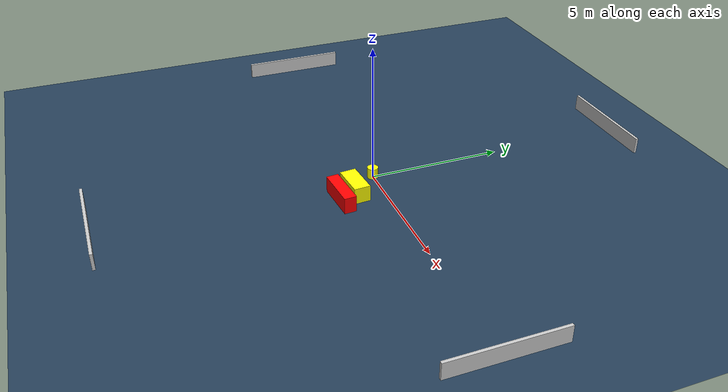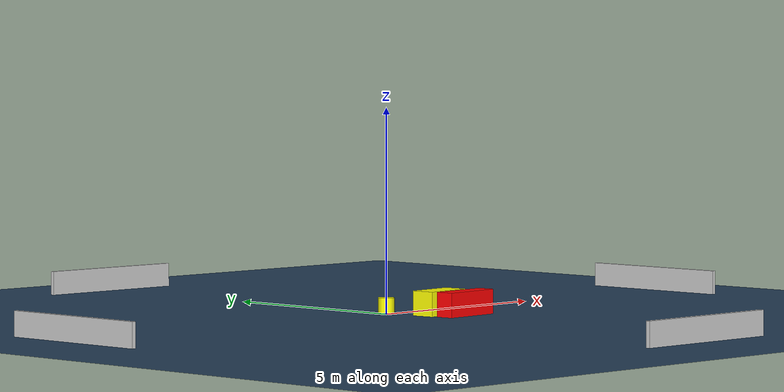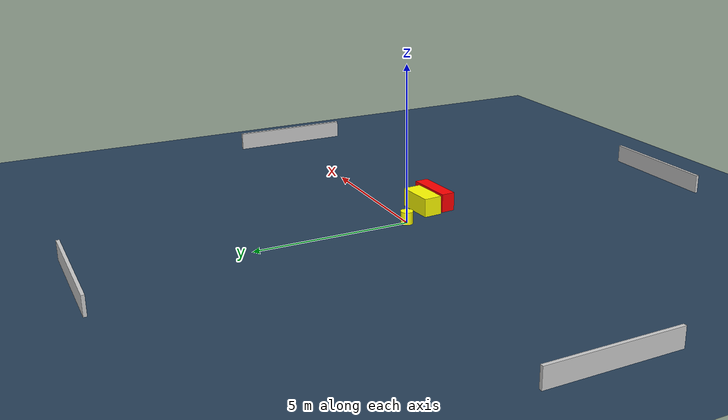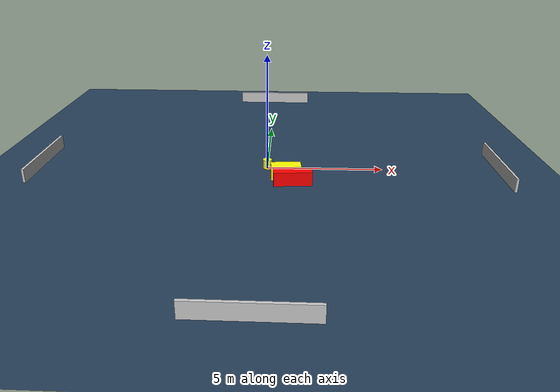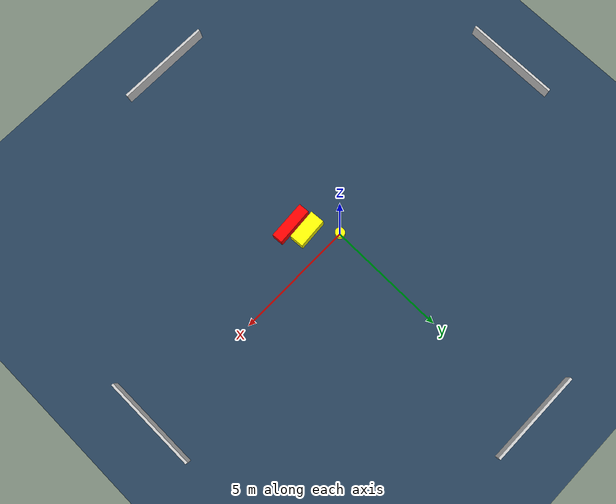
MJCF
<?xml version="1.0" ?>
<mujoco model="generated_environment">
  <option timestep="0.01" integrator="RK4" cone="elliptic"/>
  <default>
    <geom density="1"/>
  </default>
  <asset>
    <texture builtin="gradient" height="3072" name="skybox" rgb1="0.3 0.5 0.7" rgb2="0 0 0" type="skybox" width="512"/>
    <texture builtin="checker" height="300" name="groundplane" rgb1="0.2 0.3 0.4" rgb2="0.1 0.2 0.3" type="2d" width="300"/>
    <material name="groundplane" reflectance="0.2" texrepeat="5 5" texture="groundplane"/>
  </asset>
  <worldbody>
    <light dir="0 0 -1" directional="true" pos="0 0 1.5"/>
    <geom condim="3" friction="0.5 0.005 0.001" material="groundplane" name="floor" pos="0 0 0" size="0 0 0.05" type="plane"/>
    <body name="walls">
      <geom name="wall_1" condim="4" pos="-10.0 0.0 0.3" rgba="0.800000011920929 0.800000011920929 0.800000011920929 1.0" size="0.05 2.0 0.3" type="box"/>
      <geom name="wall_2" condim="4" pos="10.0 0.0 0.3" rgba="0.800000011920929 0.800000011920929 0.800000011920929 1.0" size="0.05 2.0 0.3" type="box"/>
      <geom name="wall_3" condim="4" pos="0.0 -10.0 0.3" rgba="0.800000011920929 0.800000011920929 0.800000011920929 1.0" size="2.0 0.05 0.3" type="box"/>
      <geom name="wall_4" condim="4" pos="0.0 10.0 0.3" rgba="0.800000011920929 0.800000011920929 0.800000011920929 1.0" size="2.0 0.05 0.3" type="box"/>
    </body>
    <body name="robot">
      <joint name="joint_x" type="slide" pos="0 0 0" axis="1 0 0"/>
      <joint name="joint_y" type="slide" pos="0 0 0" axis="0 1 0"/>
      <geom name="robot" type="cylinder" pos="0.0 0.0 0.2" size="0.2 0.2 0.0" mass="5.0" friction="1.0 0.005 0.0001" condim="4" rgba="1.0 1.0 0.0 1.0"/>
    </body>
    <body name="obstacle_1_movable">
      <geom name="obstacle_1_movable" condim="4" pos="0.8214815385067558 -0.9872276168029174 0.3" euler="0 0 94.4068164033668" friction="0.0 0.005 0.001" rgba="1.0 1.0 0.0 1.0" size="0.29882173040572163 0.6315599463512167 0.3" type="box" mass="0.1"/>
      <joint type="free"/>
    </body>
    <body name="obstacle_2_static">
      <geom name="obstacle_2_static" condim="4" pos="1.1038122753228277 -1.5932834216156782 0.3" euler="0 0 4.069155989199955" friction="0.0 0.005 0.001" rgba="1.0 0.0 0.0 1.0" size="0.7958897178806994 0.22357246909307016 0.3" type="box"/>
    </body>
  </worldbody>
  <actuator>
    <motor name="actuator_x" joint="joint_x" gear="1" ctrlrange="-1 1"/>
    <motor name="actuator_y" joint="joint_y" gear="1" ctrlrange="-1 1"/>
  </actuator>
</mujoco>
